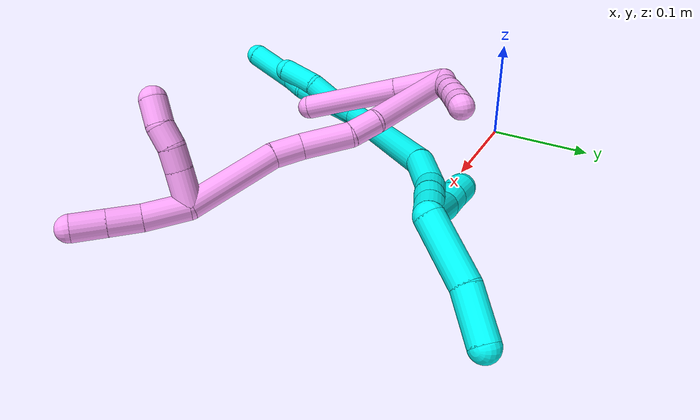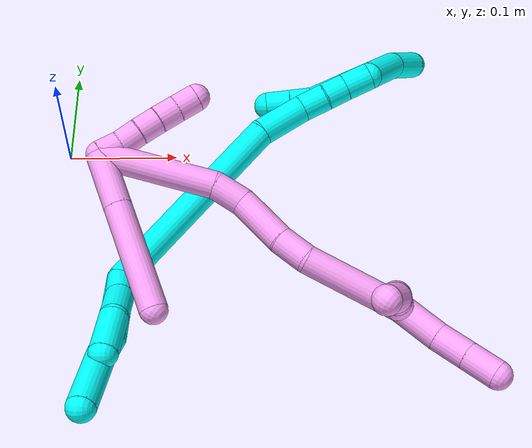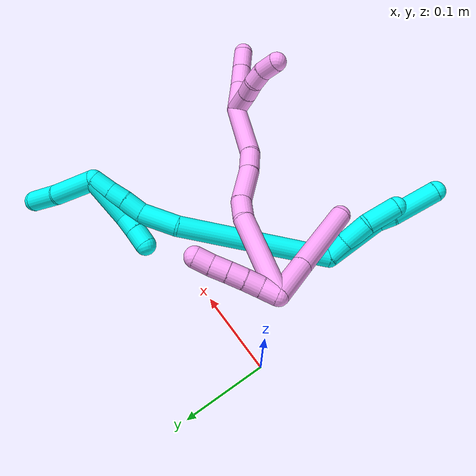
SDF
<sdf version="1.7">
 <world name="default">
  <model name="3">
   <static>0</static>
   <link name="3">
    <collision name="collision-cylinder-e_1_2_8">
     <pose>-0.02761 -0.019678 0.011037 1.05962 -0.885675 -0.541843</pose>
     <geometry><cylinder><radius>0.0125</radius><length>0.071312</length></cylinder></geometry>
     <surface>
      <friction><ode><mu>1.16</mu><mu2>1.16</mu2><slip1>0</slip1><slip2>0</slip2></ode></friction>
      <contact><ode><kp>1e+06</kp><kd>1</kd><max_vel>0</max_vel><min_depth>0.001</min_depth></ode></contact>
     </surface>
    </collision>
    <visual name="visual-cylinder-e_1_2_8">
     <pose>-0.02761 -0.019678 0.011037 1.05962 -0.885675 -0.541843</pose>
     <geometry><cylinder><radius>0.0125</radius><length>0.071312</length></cylinder></geometry>
     <material><ambient>0.003922 1 0.996078 1</ambient></material>
    </visual>
    <collision name="collision-cylinder-e_2_8_9">
     <pose>-0.064014 -0.044643 0.022452 1.49965 -1.02836 -0.968525</pose>
     <geometry><cylinder><radius>0.0125</radius><length>0.020537</length></cylinder></geometry>
     <surface>
      <friction><ode><mu>1.16</mu><mu2>1.16</mu2><slip1>0</slip1><slip2>0</slip2></ode></friction>
      <contact><ode><kp>1e+06</kp><kd>1</kd><max_vel>0</max_vel><min_depth>0.001</min_depth></ode></contact>
     </surface>
    </collision>
    <visual name="visual-cylinder-e_2_8_9">
     <pose>-0.064014 -0.044643 0.022452 1.49965 -1.02836 -0.968525</pose>
     <geometry><cylinder><radius>0.0125</radius><length>0.020537</length></cylinder></geometry>
     <material><ambient>0.003922 1 0.996078 1</ambient></material>
    </visual>
    <collision name="collision-cylinder-e_3_9_6">
     <pose>-0.097148 -0.064916 0.02816 1.22897 -0.991953 -0.729443</pose>
     <geometry><cylinder><radius>0.0125</radius><length>0.058151</length></cylinder></geometry>
     <surface>
      <friction><ode><mu>1.16</mu><mu2>1.16</mu2><slip1>0</slip1><slip2>0</slip2></ode></friction>
      <contact><ode><kp>1e+06</kp><kd>1</kd><max_vel>0</max_vel><min_depth>0.001</min_depth></ode></contact>
     </surface>
    </collision>
    <visual name="visual-cylinder-e_3_9_6">
     <pose>-0.097148 -0.064916 0.02816 1.22897 -0.991953 -0.729443</pose>
     <geometry><cylinder><radius>0.0125</radius><length>0.058151</length></cylinder></geometry>
     <material><ambient>0.003922 1 0.996078 1</ambient></material>
    </visual>
    <collision name="collision-cylinder-e_1_2_10">
     <pose>-0.010474 -0.00568 0.005208 0.828695 -0.93646 -0.437734</pose>
     <geometry><cylinder><radius>0.0125</radius><length>0.026008</length></cylinder></geometry>
     <surface>
      <friction><ode><mu>1.16</mu><mu2>1.16</mu2><slip1>0</slip1><slip2>0</slip2></ode></friction>
      <contact><ode><kp>1e+06</kp><kd>1</kd><max_vel>0</max_vel><min_depth>0.001</min_depth></ode></contact>
     </surface>
    </collision>
    <visual name="visual-cylinder-e_1_2_10">
     <pose>-0.010474 -0.00568 0.005208 0.828695 -0.93646 -0.437734</pose>
     <geometry><cylinder><radius>0.0125</radius><length>0.026008</length></cylinder></geometry>
     <material><ambient>0.003922 1 0.996078 1</ambient></material>
    </visual>
    <collision name="collision-cylinder-e_2_10_11">
     <pose>-0.035731 -0.017091 0.016242 0.777195 -1.06581 -0.473896</pose>
     <geometry><cylinder><radius>0.0125</radius><length>0.033782</length></cylinder></geometry>
     <surface>
      <friction><ode><mu>1.16</mu><mu2>1.16</mu2><slip1>0</slip1><slip2>0</slip2></ode></friction>
      <contact><ode><kp>1e+06</kp><kd>1</kd><max_vel>0</max_vel><min_depth>0.001</min_depth></ode></contact>
     </surface>
    </collision>
    <visual name="visual-cylinder-e_2_10_11">
     <pose>-0.035731 -0.017091 0.016242 0.777195 -1.06581 -0.473896</pose>
     <geometry><cylinder><radius>0.0125</radius><length>0.033782</length></cylinder></geometry>
     <material><ambient>0.003922 1 0.996078 1</ambient></material>
    </visual>
    <collision name="collision-cylinder-e_3_11_5">
     <pose>-0.066319 -0.034524 0.026249 1.22762 -0.904497 -0.659633</pose>
     <geometry><cylinder><radius>0.0125</radius><length>0.04021</length></cylinder></geometry>
     <surface>
      <friction><ode><mu>1.16</mu><mu2>1.16</mu2><slip1>0</slip1><slip2>0</slip2></ode></friction>
      <contact><ode><kp>1e+06</kp><kd>1</kd><max_vel>0</max_vel><min_depth>0.001</min_depth></ode></contact>
     </surface>
    </collision>
    <visual name="visual-cylinder-e_3_11_5">
     <pose>-0.066319 -0.034524 0.026249 1.22762 -0.904497 -0.659633</pose>
     <geometry><cylinder><radius>0.0125</radius><length>0.04021</length></cylinder></geometry>
     <material><ambient>0.003922 1 0.996078 1</ambient></material>
    </visual>
    <collision name="collision-cylinder-e_1_2_12">
     <pose>0.053323 0.061438 0.043918 -0.95018 0.614781 -0.323729</pose>
     <geometry><cylinder><radius>0.0125</radius><length>0.184898</length></cylinder></geometry>
     <surface>
      <friction><ode><mu>1.16</mu><mu2>1.16</mu2><slip1>0</slip1><slip2>0</slip2></ode></friction>
      <contact><ode><kp>1e+06</kp><kd>1</kd><max_vel>0</max_vel><min_depth>0.001</min_depth></ode></contact>
     </surface>
    </collision>
    <visual name="visual-cylinder-e_1_2_12">
     <pose>0.053323 0.061438 0.043918 -0.95018 0.614781 -0.323729</pose>
     <geometry><cylinder><radius>0.0125</radius><length>0.184898</length></cylinder></geometry>
     <material><ambient>0.003922 1 0.996078 1</ambient></material>
    </visual>
    <collision name="collision-cylinder-e_2_12_13">
     <pose>0.121258 0.133281 0.101881 -0.637632 0.696353 -0.238474</pose>
     <geometry><cylinder><radius>0.0125</radius><length>0.045565</length></cylinder></geometry>
     <surface>
      <friction><ode><mu>1.16</mu><mu2>1.16</mu2><slip1>0</slip1><slip2>0</slip2></ode></friction>
      <contact><ode><kp>1e+06</kp><kd>1</kd><max_vel>0</max_vel><min_depth>0.001</min_depth></ode></contact>
     </surface>
    </collision>
    <visual name="visual-cylinder-e_2_12_13">
     <pose>0.121258 0.133281 0.101881 -0.637632 0.696353 -0.238474</pose>
     <geometry><cylinder><radius>0.0125</radius><length>0.045565</length></cylinder></geometry>
     <material><ambient>0.003922 1 0.996078 1</ambient></material>
    </visual>
    <collision name="collision-cylinder-e_3_13_14">
     <pose>0.140736 0.148908 0.125896 -0.482419 0.407961 -0.101686</pose>
     <geometry><cylinder><radius>0.0125</radius><length>0.024524</length></cylinder></geometry>
     <surface>
      <friction><ode><mu>1.16</mu><mu2>1.16</mu2><slip1>0</slip1><slip2>0</slip2></ode></friction>
      <contact><ode><kp>1e+06</kp><kd>1</kd><max_vel>0</max_vel><min_depth>0.001</min_depth></ode></contact>
     </surface>
    </collision>
    <visual name="visual-cylinder-e_3_13_14">
     <pose>0.140736 0.148908 0.125896 -0.482419 0.407961 -0.101686</pose>
     <geometry><cylinder><radius>0.0125</radius><length>0.024524</length></cylinder></geometry>
     <material><ambient>0.003922 1 0.996078 1</ambient></material>
    </visual>
    <collision name="collision-cylinder-e_4_14_15">
     <pose>0.15051 0.158421 0.143636 -0.504666 0.505234 -0.132911</pose>
     <geometry><cylinder><radius>0.0125</radius><length>0.020284</length></cylinder></geometry>
     <surface>
      <friction><ode><mu>1.16</mu><mu2>1.16</mu2><slip1>0</slip1><slip2>0</slip2></ode></friction>
      <contact><ode><kp>1e+06</kp><kd>1</kd><max_vel>0</max_vel><min_depth>0.001</min_depth></ode></contact>
     </surface>
    </collision>
    <visual name="visual-cylinder-e_4_14_15">
     <pose>0.15051 0.158421 0.143636 -0.504666 0.505234 -0.132911</pose>
     <geometry><cylinder><radius>0.0125</radius><length>0.020284</length></cylinder></geometry>
     <material><ambient>0.003922 1 0.996078 1</ambient></material>
    </visual>
    <collision name="collision-cylinder-e_5_15_1">
     <pose>0.160815 0.167701 0.161348 -0.465077 0.451594 -0.108696</pose>
     <geometry><cylinder><radius>0.0125</radius><length>0.024729</length></cylinder></geometry>
     <surface>
      <friction><ode><mu>1.16</mu><mu2>1.16</mu2><slip1>0</slip1><slip2>0</slip2></ode></friction>
      <contact><ode><kp>1e+06</kp><kd>1</kd><max_vel>0</max_vel><min_depth>0.001</min_depth></ode></contact>
     </surface>
    </collision>
    <visual name="visual-cylinder-e_5_15_1">
     <pose>0.160815 0.167701 0.161348 -0.465077 0.451594 -0.108696</pose>
     <geometry><cylinder><radius>0.0125</radius><length>0.024729</length></cylinder></geometry>
     <material><ambient>0.003922 1 0.996078 1</ambient></material>
    </visual>
    <collision name="collision-cylinder-e_1_1_16">
     <pose>0.194385 0.177929 0.173288 -1.20657 1.3744 -1.02917</pose>
     <geometry><cylinder><radius>0.0125</radius><length>0.057453</length></cylinder></geometry>
     <surface>
      <friction><ode><mu>1.16</mu><mu2>1.16</mu2><slip1>0</slip1><slip2>0</slip2></ode></friction>
      <contact><ode><kp>1e+06</kp><kd>1</kd><max_vel>0</max_vel><min_depth>0.001</min_depth></ode></contact>
     </surface>
    </collision>
    <visual name="visual-cylinder-e_1_1_16">
     <pose>0.194385 0.177929 0.173288 -1.20657 1.3744 -1.02917</pose>
     <geometry><cylinder><radius>0.0125</radius><length>0.057453</length></cylinder></geometry>
     <material><ambient>0.003922 1 0.996078 1</ambient></material>
    </visual>
    <collision name="collision-cylinder-e_2_16_4">
     <pose>0.243477 0.183683 0.179124 -0.133649 1.38769 -0.111223</pose>
     <geometry><cylinder><radius>0.0125</radius><length>0.042547</length></cylinder></geometry>
     <surface>
      <friction><ode><mu>1.16</mu><mu2>1.16</mu2><slip1>0</slip1><slip2>0</slip2></ode></friction>
      <contact><ode><kp>1e+06</kp><kd>1</kd><max_vel>0</max_vel><min_depth>0.001</min_depth></ode></contact>
     </surface>
    </collision>
    <visual name="visual-cylinder-e_2_16_4">
     <pose>0.243477 0.183683 0.179124 -0.133649 1.38769 -0.111223</pose>
     <geometry><cylinder><radius>0.0125</radius><length>0.042547</length></cylinder></geometry>
     <material><ambient>0.003922 1 0.996078 1</ambient></material>
    </visual>
    <collision name="collision-cylinder-e_1_1_17">
     <pose>0.161023 0.16178 0.145492 2.74148 -0.183135 -0.850442</pose>
     <geometry><cylinder><radius>0.0125</radius><length>0.056977</length></cylinder></geometry>
     <surface>
      <friction><ode><mu>1.16</mu><mu2>1.16</mu2><slip1>0</slip1><slip2>0</slip2></ode></friction>
      <contact><ode><kp>1e+06</kp><kd>1</kd><max_vel>0</max_vel><min_depth>0.001</min_depth></ode></contact>
     </surface>
    </collision>
    <visual name="visual-cylinder-e_1_1_17">
     <pose>0.161023 0.16178 0.145492 2.74148 -0.183135 -0.850442</pose>
     <geometry><cylinder><radius>0.0125</radius><length>0.056977</length></cylinder></geometry>
     <material><ambient>0.003922 1 0.996078 1</ambient></material>
    </visual>
    <collision name="collision-cylinder-e_2_17_18">
     <pose>0.152167 0.149778 0.109839 3.03137 -0.35436 -2.54387</pose>
     <geometry><cylinder><radius>0.0125</radius><length>0.021141</length></cylinder></geometry>
     <surface>
      <friction><ode><mu>1.16</mu><mu2>1.16</mu2><slip1>0</slip1><slip2>0</slip2></ode></friction>
      <contact><ode><kp>1e+06</kp><kd>1</kd><max_vel>0</max_vel><min_depth>0.001</min_depth></ode></contact>
     </surface>
    </collision>
    <visual name="visual-cylinder-e_2_17_18">
     <pose>0.152167 0.149778 0.109839 3.03137 -0.35436 -2.54387</pose>
     <geometry><cylinder><radius>0.0125</radius><length>0.021141</length></cylinder></geometry>
     <material><ambient>0.003922 1 0.996078 1</ambient></material>
    </visual>
    <collision name="collision-cylinder-e_3_18_3">
     <pose>0.145166 0.147634 0.089618 3.04034 -0.309594 -2.51366</pose>
     <geometry><cylinder><radius>0.0125</radius><length>0.021883</length></cylinder></geometry>
     <surface>
      <friction><ode><mu>1.16</mu><mu2>1.16</mu2><slip1>0</slip1><slip2>0</slip2></ode></friction>
      <contact><ode><kp>1e+06</kp><kd>1</kd><max_vel>0</max_vel><min_depth>0.001</min_depth></ode></contact>
     </surface>
    </collision>
    <visual name="visual-cylinder-e_3_18_3">
     <pose>0.145166 0.147634 0.089618 3.04034 -0.309594 -2.51366</pose>
     <geometry><cylinder><radius>0.0125</radius><length>0.021883</length></cylinder></geometry>
     <material><ambient>0.003922 1 0.996078 1</ambient></material>
    </visual>
    <collision name="collision-sphere-3">
     <pose>0.141832 0.146581 0.07925 0 -0 0</pose>
     <geometry><sphere><radius>0.0125</radius></sphere></geometry>
     <surface>
      <friction><ode><mu>1.16</mu><mu2>1.16</mu2><slip1>0</slip1><slip2>0</slip2></ode></friction>
      <contact><ode><kp>1e+06</kp><kd>1</kd><max_vel>0</max_vel><min_depth>0.001</min_depth></ode></contact>
     </surface>
    </collision>
    <visual name="visual-sphere-3">
     <pose>0.141832 0.146581 0.07925 0 -0 0</pose>
     <geometry><sphere><radius>0.0125</radius></sphere></geometry>
     <material><ambient>0.003922 1 0.996078 1</ambient></material>
    </visual>
    <collision name="collision-sphere-11">
     <pose>-0.050514 -0.022822 0.022068 0 -0 0</pose>
     <geometry><sphere><radius>0.0125</radius></sphere></geometry>
     <surface>
      <friction><ode><mu>1.16</mu><mu2>1.16</mu2><slip1>0</slip1><slip2>0</slip2></ode></friction>
      <contact><ode><kp>1e+06</kp><kd>1</kd><max_vel>0</max_vel><min_depth>0.001</min_depth></ode></contact>
     </surface>
    </collision>
    <visual name="visual-sphere-11">
     <pose>-0.050514 -0.022822 0.022068 0 -0 0</pose>
     <geometry><sphere><radius>0.0125</radius></sphere></geometry>
     <material><ambient>0.003922 1 0.996078 1</ambient></material>
    </visual>
    <collision name="collision-sphere-10">
     <pose>-0.020948 -0.01136 0.010417 0 -0 0</pose>
     <geometry><sphere><radius>0.0125</radius></sphere></geometry>
     <surface>
      <friction><ode><mu>1.16</mu><mu2>1.16</mu2><slip1>0</slip1><slip2>0</slip2></ode></friction>
      <contact><ode><kp>1e+06</kp><kd>1</kd><max_vel>0</max_vel><min_depth>0.001</min_depth></ode></contact>
     </surface>
    </collision>
    <visual name="visual-sphere-10">
     <pose>-0.020948 -0.01136 0.010417 0 -0 0</pose>
     <geometry><sphere><radius>0.0125</radius></sphere></geometry>
     <material><ambient>0.003922 1 0.996078 1</ambient></material>
    </visual>
    <collision name="collision-sphere-6">
     <pose>-0.121487 -0.079902 0.033492 0 -0 0</pose>
     <geometry><sphere><radius>0.0125</radius></sphere></geometry>
     <surface>
      <friction><ode><mu>1.16</mu><mu2>1.16</mu2><slip1>0</slip1><slip2>0</slip2></ode></friction>
      <contact><ode><kp>1e+06</kp><kd>1</kd><max_vel>0</max_vel><min_depth>0.001</min_depth></ode></contact>
     </surface>
    </collision>
    <visual name="visual-sphere-6">
     <pose>-0.121487 -0.079902 0.033492 0 -0 0</pose>
     <geometry><sphere><radius>0.0125</radius></sphere></geometry>
     <material><ambient>0.003922 1 0.996078 1</ambient></material>
    </visual>
    <collision name="collision-sphere-9">
     <pose>-0.072809 -0.04993 0.022828 0 -0 0</pose>
     <geometry><sphere><radius>0.0125</radius></sphere></geometry>
     <surface>
      <friction><ode><mu>1.16</mu><mu2>1.16</mu2><slip1>0</slip1><slip2>0</slip2></ode></friction>
      <contact><ode><kp>1e+06</kp><kd>1</kd><max_vel>0</max_vel><min_depth>0.001</min_depth></ode></contact>
     </surface>
    </collision>
    <visual name="visual-sphere-9">
     <pose>-0.072809 -0.04993 0.022828 0 -0 0</pose>
     <geometry><sphere><radius>0.0125</radius></sphere></geometry>
     <material><ambient>0.003922 1 0.996078 1</ambient></material>
    </visual>
    <collision name="collision-sphere-2">
     <geometry><sphere><radius>0.0125</radius></sphere></geometry>
     <surface>
      <friction><ode><mu>1.16</mu><mu2>1.16</mu2><slip1>0</slip1><slip2>0</slip2></ode></friction>
      <contact><ode><kp>1e+06</kp><kd>1</kd><max_vel>0</max_vel><min_depth>0.001</min_depth></ode></contact>
     </surface>
    </collision>
    <visual name="visual-sphere-2">
     <geometry><sphere><radius>0.0125</radius></sphere></geometry>
     <material><ambient>0.003922 1 0.996078 1</ambient></material>
    </visual>
    <collision name="collision-sphere-8">
     <pose>-0.05522 -0.039356 0.022075 0 -0 0</pose>
     <geometry><sphere><radius>0.0125</radius></sphere></geometry>
     <surface>
      <friction><ode><mu>1.16</mu><mu2>1.16</mu2><slip1>0</slip1><slip2>0</slip2></ode></friction>
      <contact><ode><kp>1e+06</kp><kd>1</kd><max_vel>0</max_vel><min_depth>0.001</min_depth></ode></contact>
     </surface>
    </collision>
    <visual name="visual-sphere-8">
     <pose>-0.05522 -0.039356 0.022075 0 -0 0</pose>
     <geometry><sphere><radius>0.0125</radius></sphere></geometry>
     <material><ambient>0.003922 1 0.996078 1</ambient></material>
    </visual>
    <collision name="collision-sphere-5">
     <pose>-0.082124 -0.046226 0.030431 0 -0 0</pose>
     <geometry><sphere><radius>0.0125</radius></sphere></geometry>
     <surface>
      <friction><ode><mu>1.16</mu><mu2>1.16</mu2><slip1>0</slip1><slip2>0</slip2></ode></friction>
      <contact><ode><kp>1e+06</kp><kd>1</kd><max_vel>0</max_vel><min_depth>0.001</min_depth></ode></contact>
     </surface>
    </collision>
    <visual name="visual-sphere-5">
     <pose>-0.082124 -0.046226 0.030431 0 -0 0</pose>
     <geometry><sphere><radius>0.0125</radius></sphere></geometry>
     <material><ambient>0.003922 1 0.996078 1</ambient></material>
    </visual>
    <collision name="collision-sphere-12">
     <pose>0.106645 0.122876 0.087837 0 -0 0</pose>
     <geometry><sphere><radius>0.0125</radius></sphere></geometry>
     <surface>
      <friction><ode><mu>1.16</mu><mu2>1.16</mu2><slip1>0</slip1><slip2>0</slip2></ode></friction>
      <contact><ode><kp>1e+06</kp><kd>1</kd><max_vel>0</max_vel><min_depth>0.001</min_depth></ode></contact>
     </surface>
    </collision>
    <visual name="visual-sphere-12">
     <pose>0.106645 0.122876 0.087837 0 -0 0</pose>
     <geometry><sphere><radius>0.0125</radius></sphere></geometry>
     <material><ambient>0.003922 1 0.996078 1</ambient></material>
    </visual>
    <collision name="collision-sphere-13">
     <pose>0.135872 0.143686 0.115925 0 -0 0</pose>
     <geometry><sphere><radius>0.0125</radius></sphere></geometry>
     <surface>
      <friction><ode><mu>1.16</mu><mu2>1.16</mu2><slip1>0</slip1><slip2>0</slip2></ode></friction>
      <contact><ode><kp>1e+06</kp><kd>1</kd><max_vel>0</max_vel><min_depth>0.001</min_depth></ode></contact>
     </surface>
    </collision>
    <visual name="visual-sphere-13">
     <pose>0.135872 0.143686 0.115925 0 -0 0</pose>
     <geometry><sphere><radius>0.0125</radius></sphere></geometry>
     <material><ambient>0.003922 1 0.996078 1</ambient></material>
    </visual>
    <collision name="collision-sphere-14">
     <pose>0.145601 0.15413 0.135867 0 -0 0</pose>
     <geometry><sphere><radius>0.0125</radius></sphere></geometry>
     <surface>
      <friction><ode><mu>1.16</mu><mu2>1.16</mu2><slip1>0</slip1><slip2>0</slip2></ode></friction>
      <contact><ode><kp>1e+06</kp><kd>1</kd><max_vel>0</max_vel><min_depth>0.001</min_depth></ode></contact>
     </surface>
    </collision>
    <visual name="visual-sphere-14">
     <pose>0.145601 0.15413 0.135867 0 -0 0</pose>
     <geometry><sphere><radius>0.0125</radius></sphere></geometry>
     <material><ambient>0.003922 1 0.996078 1</ambient></material>
    </visual>
    <collision name="collision-sphere-15">
     <pose>0.155419 0.162712 0.151404 0 -0 0</pose>
     <geometry><sphere><radius>0.0125</radius></sphere></geometry>
     <surface>
      <friction><ode><mu>1.16</mu><mu2>1.16</mu2><slip1>0</slip1><slip2>0</slip2></ode></friction>
      <contact><ode><kp>1e+06</kp><kd>1</kd><max_vel>0</max_vel><min_depth>0.001</min_depth></ode></contact>
     </surface>
    </collision>
    <visual name="visual-sphere-15">
     <pose>0.155419 0.162712 0.151404 0 -0 0</pose>
     <geometry><sphere><radius>0.0125</radius></sphere></geometry>
     <material><ambient>0.003922 1 0.996078 1</ambient></material>
    </visual>
    <collision name="collision-sphere-1">
     <pose>0.166211 0.172691 0.171291 0 -0 0</pose>
     <geometry><sphere><radius>0.0125</radius></sphere></geometry>
     <surface>
      <friction><ode><mu>1.16</mu><mu2>1.16</mu2><slip1>0</slip1><slip2>0</slip2></ode></friction>
      <contact><ode><kp>1e+06</kp><kd>1</kd><max_vel>0</max_vel><min_depth>0.001</min_depth></ode></contact>
     </surface>
    </collision>
    <visual name="visual-sphere-1">
     <pose>0.166211 0.172691 0.171291 0 -0 0</pose>
     <geometry><sphere><radius>0.0125</radius></sphere></geometry>
     <material><ambient>0.003922 1 0.996078 1</ambient></material>
    </visual>
    <collision name="collision-sphere-18">
     <pose>0.148499 0.148687 0.099986 0 -0 0</pose>
     <geometry><sphere><radius>0.0125</radius></sphere></geometry>
     <surface>
      <friction><ode><mu>1.16</mu><mu2>1.16</mu2><slip1>0</slip1><slip2>0</slip2></ode></friction>
      <contact><ode><kp>1e+06</kp><kd>1</kd><max_vel>0</max_vel><min_depth>0.001</min_depth></ode></contact>
     </surface>
    </collision>
    <visual name="visual-sphere-18">
     <pose>0.148499 0.148687 0.099986 0 -0 0</pose>
     <geometry><sphere><radius>0.0125</radius></sphere></geometry>
     <material><ambient>0.003922 1 0.996078 1</ambient></material>
    </visual>
    <collision name="collision-sphere-16">
     <pose>0.22256 0.183167 0.175285 0 -0 0</pose>
     <geometry><sphere><radius>0.0125</radius></sphere></geometry>
     <surface>
      <friction><ode><mu>1.16</mu><mu2>1.16</mu2><slip1>0</slip1><slip2>0</slip2></ode></friction>
      <contact><ode><kp>1e+06</kp><kd>1</kd><max_vel>0</max_vel><min_depth>0.001</min_depth></ode></contact>
     </surface>
    </collision>
    <visual name="visual-sphere-16">
     <pose>0.22256 0.183167 0.175285 0 -0 0</pose>
     <geometry><sphere><radius>0.0125</radius></sphere></geometry>
     <material><ambient>0.003922 1 0.996078 1</ambient></material>
    </visual>
    <collision name="collision-sphere-4">
     <pose>0.264395 0.184199 0.182963 0 -0 0</pose>
     <geometry><sphere><radius>0.0125</radius></sphere></geometry>
     <surface>
      <friction><ode><mu>1.16</mu><mu2>1.16</mu2><slip1>0</slip1><slip2>0</slip2></ode></friction>
      <contact><ode><kp>1e+06</kp><kd>1</kd><max_vel>0</max_vel><min_depth>0.001</min_depth></ode></contact>
     </surface>
    </collision>
    <visual name="visual-sphere-4">
     <pose>0.264395 0.184199 0.182963 0 -0 0</pose>
     <geometry><sphere><radius>0.0125</radius></sphere></geometry>
     <material><ambient>0.003922 1 0.996078 1</ambient></material>
    </visual>
    <collision name="collision-sphere-17">
     <pose>0.155835 0.150868 0.119692 0 -0 0</pose>
     <geometry><sphere><radius>0.0125</radius></sphere></geometry>
     <surface>
      <friction><ode><mu>1.16</mu><mu2>1.16</mu2><slip1>0</slip1><slip2>0</slip2></ode></friction>
      <contact><ode><kp>1e+06</kp><kd>1</kd><max_vel>0</max_vel><min_depth>0.001</min_depth></ode></contact>
     </surface>
    </collision>
    <visual name="visual-sphere-17">
     <pose>0.155835 0.150868 0.119692 0 -0 0</pose>
     <geometry><sphere><radius>0.0125</radius></sphere></geometry>
     <material><ambient>0.003922 1 0.996078 1</ambient></material>
    </visual>
    <inertial>
     <pose>0.066509 0.071852 0.076705 0 -0 0</pose>
     <mass>0.75</mass>
     <inertia>
      <ixx>0.000292</ixx>
      <ixy>0</ixy>
      <ixz>0</ixz>
      <iyy>0.00028</iyy>
      <iyz>0</iyz>
      <izz>-0.000595</izz>
     </inertia>
    </inertial>
   </link>
   <pose>0.057707 -0.144284 0.011491 1.14825 0.743275 0.991347</pose>
  </model>
  <model name="4">
   <static>0</static>
   <link name="4">
    <collision name="collision-cylinder-e_1_2_8">
     <pose>0.007174 -0.011177 0.022217 0.466124 0.280848 0.067083</pose>
     <geometry><cylinder><radius>0.0125</radius><length>0.051768</length></cylinder></geometry>
     <surface>
      <friction><ode><mu>1.16</mu><mu2>1.16</mu2><slip1>0</slip1><slip2>0</slip2></ode></friction>
      <contact><ode><kp>1e+06</kp><kd>1</kd><max_vel>0</max_vel><min_depth>0.001</min_depth></ode></contact>
     </surface>
    </collision>
    <visual name="visual-cylinder-e_1_2_8">
     <pose>0.007174 -0.011177 0.022217 0.466124 0.280848 0.067083</pose>
     <geometry><cylinder><radius>0.0125</radius><length>0.051768</length></cylinder></geometry>
     <material><ambient>1 0.65098 0.996078 1</ambient></material>
    </visual>
    <collision name="collision-cylinder-e_2_8_6">
     <pose>0.02797 -0.043559 0.08659 0.466037 0.281008 0.067109</pose>
     <geometry><cylinder><radius>0.0125</radius><length>0.098232</length></cylinder></geometry>
     <surface>
      <friction><ode><mu>1.16</mu><mu2>1.16</mu2><slip1>0</slip1><slip2>0</slip2></ode></friction>
      <contact><ode><kp>1e+06</kp><kd>1</kd><max_vel>0</max_vel><min_depth>0.001</min_depth></ode></contact>
     </surface>
    </collision>
    <visual name="visual-cylinder-e_2_8_6">
     <pose>0.02797 -0.043559 0.08659 0.466037 0.281008 0.067109</pose>
     <geometry><cylinder><radius>0.0125</radius><length>0.098232</length></cylinder></geometry>
     <material><ambient>1 0.65098 0.996078 1</ambient></material>
    </visual>
    <collision name="collision-cylinder-e_1_2_9">
     <pose>-0.001706 0.009307 0.003235 -1.23631 -0.171468 0.122083</pose>
     <geometry><cylinder><radius>0.0125</radius><length>0.02</length></cylinder></geometry>
     <surface>
      <friction><ode><mu>1.16</mu><mu2>1.16</mu2><slip1>0</slip1><slip2>0</slip2></ode></friction>
      <contact><ode><kp>1e+06</kp><kd>1</kd><max_vel>0</max_vel><min_depth>0.001</min_depth></ode></contact>
     </surface>
    </collision>
    <visual name="visual-cylinder-e_1_2_9">
     <pose>-0.001706 0.009307 0.003235 -1.23631 -0.171468 0.122083</pose>
     <geometry><cylinder><radius>0.0125</radius><length>0.02</length></cylinder></geometry>
     <material><ambient>1 0.65098 0.996078 1</ambient></material>
    </visual>
    <collision name="collision-cylinder-e_2_9_10">
     <pose>-0.006602 0.027757 0.008969 -1.30393 -0.324566 0.248653</pose>
     <geometry><cylinder><radius>0.0125</radius><length>0.02</length></cylinder></geometry>
     <surface>
      <friction><ode><mu>1.16</mu><mu2>1.16</mu2><slip1>0</slip1><slip2>0</slip2></ode></friction>
      <contact><ode><kp>1e+06</kp><kd>1</kd><max_vel>0</max_vel><min_depth>0.001</min_depth></ode></contact>
     </surface>
    </collision>
    <visual name="visual-cylinder-e_2_9_10">
     <pose>-0.006602 0.027757 0.008969 -1.30393 -0.324566 0.248653</pose>
     <geometry><cylinder><radius>0.0125</radius><length>0.02</length></cylinder></geometry>
     <material><ambient>1 0.65098 0.996078 1</ambient></material>
    </visual>
    <collision name="collision-cylinder-e_3_10_11">
     <pose>-0.012315 0.04623 0.014032 -1.30259 -0.255184 0.194957</pose>
     <geometry><cylinder><radius>0.0125</radius><length>0.02</length></cylinder></geometry>
     <surface>
      <friction><ode><mu>1.16</mu><mu2>1.16</mu2><slip1>0</slip1><slip2>0</slip2></ode></friction>
      <contact><ode><kp>1e+06</kp><kd>1</kd><max_vel>0</max_vel><min_depth>0.001</min_depth></ode></contact>
     </surface>
    </collision>
    <visual name="visual-cylinder-e_3_10_11">
     <pose>-0.012315 0.04623 0.014032 -1.30259 -0.255184 0.194957</pose>
     <geometry><cylinder><radius>0.0125</radius><length>0.02</length></cylinder></geometry>
     <material><ambient>1 0.65098 0.996078 1</ambient></material>
    </visual>
    <collision name="collision-cylinder-e_4_11_12">
     <pose>-0.016907 0.065004 0.019152 -1.3065 -0.208331 0.159685</pose>
     <geometry><cylinder><radius>0.0125</radius><length>0.02</length></cylinder></geometry>
     <surface>
      <friction><ode><mu>1.16</mu><mu2>1.16</mu2><slip1>0</slip1><slip2>0</slip2></ode></friction>
      <contact><ode><kp>1e+06</kp><kd>1</kd><max_vel>0</max_vel><min_depth>0.001</min_depth></ode></contact>
     </surface>
    </collision>
    <visual name="visual-cylinder-e_4_11_12">
     <pose>-0.016907 0.065004 0.019152 -1.3065 -0.208331 0.159685</pose>
     <geometry><cylinder><radius>0.0125</radius><length>0.02</length></cylinder></geometry>
     <material><ambient>1 0.65098 0.996078 1</ambient></material>
    </visual>
    <collision name="collision-cylinder-e_5_12_5">
     <pose>-0.021674 0.083565 0.024806 -1.24327 -0.273228 0.196329</pose>
     <geometry><cylinder><radius>0.0125</radius><length>0.02</length></cylinder></geometry>
     <surface>
      <friction><ode><mu>1.16</mu><mu2>1.16</mu2><slip1>0</slip1><slip2>0</slip2></ode></friction>
      <contact><ode><kp>1e+06</kp><kd>1</kd><max_vel>0</max_vel><min_depth>0.001</min_depth></ode></contact>
     </surface>
    </collision>
    <visual name="visual-cylinder-e_5_12_5">
     <pose>-0.021674 0.083565 0.024806 -1.24327 -0.273228 0.196329</pose>
     <geometry><cylinder><radius>0.0125</radius><length>0.02</length></cylinder></geometry>
     <material><ambient>1 0.65098 0.996078 1</ambient></material>
    </visual>
    <collision name="collision-cylinder-e_1_2_13">
     <pose>0.001504 0.023634 0.047195 -0.464267 0.028484 -0.006734</pose>
     <geometry><cylinder><radius>0.0125</radius><length>0.105607</length></cylinder></geometry>
     <surface>
      <friction><ode><mu>1.16</mu><mu2>1.16</mu2><slip1>0</slip1><slip2>0</slip2></ode></friction>
      <contact><ode><kp>1e+06</kp><kd>1</kd><max_vel>0</max_vel><min_depth>0.001</min_depth></ode></contact>
     </surface>
    </collision>
    <visual name="visual-cylinder-e_1_2_13">
     <pose>0.001504 0.023634 0.047195 -0.464267 0.028484 -0.006734</pose>
     <geometry><cylinder><radius>0.0125</radius><length>0.105607</length></cylinder></geometry>
     <material><ambient>1 0.65098 0.996078 1</ambient></material>
    </visual>
    <collision name="collision-cylinder-e_2_13_14">
     <pose>0.00575 0.050274 0.10796 -0.217966 0.194818 -0.021383</pose>
     <geometry><cylinder><radius>0.0125</radius><length>0.028333</length></cylinder></geometry>
     <surface>
      <friction><ode><mu>1.16</mu><mu2>1.16</mu2><slip1>0</slip1><slip2>0</slip2></ode></friction>
      <contact><ode><kp>1e+06</kp><kd>1</kd><max_vel>0</max_vel><min_depth>0.001</min_depth></ode></contact>
     </surface>
    </collision>
    <visual name="visual-cylinder-e_2_13_14">
     <pose>0.00575 0.050274 0.10796 -0.217966 0.194818 -0.021383</pose>
     <geometry><cylinder><radius>0.0125</radius><length>0.028333</length></cylinder></geometry>
     <material><ambient>1 0.65098 0.996078 1</ambient></material>
    </visual>
    <collision name="collision-cylinder-e_3_14_15">
     <pose>0.01128 0.050906 0.145408 0.099076 0.115642 0.00574</pose>
     <geometry><cylinder><radius>0.0125</radius><length>0.048314</length></cylinder></geometry>
     <surface>
      <friction><ode><mu>1.16</mu><mu2>1.16</mu2><slip1>0</slip1><slip2>0</slip2></ode></friction>
      <contact><ode><kp>1e+06</kp><kd>1</kd><max_vel>0</max_vel><min_depth>0.001</min_depth></ode></contact>
     </surface>
    </collision>
    <visual name="visual-cylinder-e_3_14_15">
     <pose>0.01128 0.050906 0.145408 0.099076 0.115642 0.00574</pose>
     <geometry><cylinder><radius>0.0125</radius><length>0.048314</length></cylinder></geometry>
     <material><ambient>1 0.65098 0.996078 1</ambient></material>
    </visual>
    <collision name="collision-cylinder-e_4_15_16">
     <pose>0.015362 0.049248 0.183566 -0.050046 0.090269 -0.002261</pose>
     <geometry><cylinder><radius>0.0125</radius><length>0.028714</length></cylinder></geometry>
     <surface>
      <friction><ode><mu>1.16</mu><mu2>1.16</mu2><slip1>0</slip1><slip2>0</slip2></ode></friction>
      <contact><ode><kp>1e+06</kp><kd>1</kd><max_vel>0</max_vel><min_depth>0.001</min_depth></ode></contact>
     </surface>
    </collision>
    <visual name="visual-cylinder-e_4_15_16">
     <pose>0.015362 0.049248 0.183566 -0.050046 0.090269 -0.002261</pose>
     <geometry><cylinder><radius>0.0125</radius><length>0.028714</length></cylinder></geometry>
     <material><ambient>1 0.65098 0.996078 1</ambient></material>
    </visual>
    <collision name="collision-cylinder-e_5_16_1">
     <pose>0.025132 0.063479 0.239406 -0.314431 0.191586 -0.030462</pose>
     <geometry><cylinder><radius>0.0125</radius><length>0.089032</length></cylinder></geometry>
     <surface>
      <friction><ode><mu>1.16</mu><mu2>1.16</mu2><slip1>0</slip1><slip2>0</slip2></ode></friction>
      <contact><ode><kp>1e+06</kp><kd>1</kd><max_vel>0</max_vel><min_depth>0.001</min_depth></ode></contact>
     </surface>
    </collision>
    <visual name="visual-cylinder-e_5_16_1">
     <pose>0.025132 0.063479 0.239406 -0.314431 0.191586 -0.030462</pose>
     <geometry><cylinder><radius>0.0125</radius><length>0.089032</length></cylinder></geometry>
     <material><ambient>1 0.65098 0.996078 1</ambient></material>
    </visual>
    <collision name="collision-cylinder-e_1_1_17">
     <pose>0.034409 0.076934 0.301394 0.002978 0.039143 5.8e-05</pose>
     <geometry><cylinder><radius>0.0125</radius><length>0.04089</length></cylinder></geometry>
     <surface>
      <friction><ode><mu>1.16</mu><mu2>1.16</mu2><slip1>0</slip1><slip2>0</slip2></ode></friction>
      <contact><ode><kp>1e+06</kp><kd>1</kd><max_vel>0</max_vel><min_depth>0.001</min_depth></ode></contact>
     </surface>
    </collision>
    <visual name="visual-cylinder-e_1_1_17">
     <pose>0.034409 0.076934 0.301394 0.002978 0.039143 5.8e-05</pose>
     <geometry><cylinder><radius>0.0125</radius><length>0.04089</length></cylinder></geometry>
     <material><ambient>1 0.65098 0.996078 1</ambient></material>
    </visual>
    <collision name="collision-cylinder-e_2_17_18">
     <pose>0.033848 0.076974 0.336606 -0.006879 -0.091828 0.000316</pose>
     <geometry><cylinder><radius>0.0125</radius><length>0.02969</length></cylinder></geometry>
     <surface>
      <friction><ode><mu>1.16</mu><mu2>1.16</mu2><slip1>0</slip1><slip2>0</slip2></ode></friction>
      <contact><ode><kp>1e+06</kp><kd>1</kd><max_vel>0</max_vel><min_depth>0.001</min_depth></ode></contact>
     </surface>
    </collision>
    <visual name="visual-cylinder-e_2_17_18">
     <pose>0.033848 0.076974 0.336606 -0.006879 -0.091828 0.000316</pose>
     <geometry><cylinder><radius>0.0125</radius><length>0.02969</length></cylinder></geometry>
     <material><ambient>1 0.65098 0.996078 1</ambient></material>
    </visual>
    <collision name="collision-cylinder-e_3_18_4">
     <pose>0.031091 0.077144 0.366031 -0.004619 -0.094991 0.00022</pose>
     <geometry><cylinder><radius>0.0125</radius><length>0.029419</length></cylinder></geometry>
     <surface>
      <friction><ode><mu>1.16</mu><mu2>1.16</mu2><slip1>0</slip1><slip2>0</slip2></ode></friction>
      <contact><ode><kp>1e+06</kp><kd>1</kd><max_vel>0</max_vel><min_depth>0.001</min_depth></ode></contact>
     </surface>
    </collision>
    <visual name="visual-cylinder-e_3_18_4">
     <pose>0.031091 0.077144 0.366031 -0.004619 -0.094991 0.00022</pose>
     <geometry><cylinder><radius>0.0125</radius><length>0.029419</length></cylinder></geometry>
     <material><ambient>1 0.65098 0.996078 1</ambient></material>
    </visual>
    <collision name="collision-cylinder-e_1_1_19">
     <pose>0.018873 0.069067 0.282302 1.4037 -1.07134 -0.930226</pose>
     <geometry><cylinder><radius>0.0125</radius><length>0.033573</length></cylinder></geometry>
     <surface>
      <friction><ode><mu>1.16</mu><mu2>1.16</mu2><slip1>0</slip1><slip2>0</slip2></ode></friction>
      <contact><ode><kp>1e+06</kp><kd>1</kd><max_vel>0</max_vel><min_depth>0.001</min_depth></ode></contact>
     </surface>
    </collision>
    <visual name="visual-cylinder-e_1_1_19">
     <pose>0.018873 0.069067 0.282302 1.4037 -1.07134 -0.930226</pose>
     <geometry><cylinder><radius>0.0125</radius><length>0.033573</length></cylinder></geometry>
     <material><ambient>1 0.65098 0.996078 1</ambient></material>
    </visual>
    <collision name="collision-cylinder-e_2_19_20">
     <pose>-0.005316 0.056673 0.284722 1.33287 -1.11832 -0.914707</pose>
     <geometry><cylinder><radius>0.0125</radius><length>0.021022</length></cylinder></geometry>
     <surface>
      <friction><ode><mu>1.16</mu><mu2>1.16</mu2><slip1>0</slip1><slip2>0</slip2></ode></friction>
      <contact><ode><kp>1e+06</kp><kd>1</kd><max_vel>0</max_vel><min_depth>0.001</min_depth></ode></contact>
     </surface>
    </collision>
    <visual name="visual-cylinder-e_2_19_20">
     <pose>-0.005316 0.056673 0.284722 1.33287 -1.11832 -0.914707</pose>
     <geometry><cylinder><radius>0.0125</radius><length>0.021022</length></cylinder></geometry>
     <material><ambient>1 0.65098 0.996078 1</ambient></material>
    </visual>
    <collision name="collision-cylinder-e_3_20_21">
     <pose>-0.02267 0.046244 0.288752 1.11177 -0.871 -0.562774</pose>
     <geometry><cylinder><radius>0.0125</radius><length>0.020655</length></cylinder></geometry>
     <surface>
      <friction><ode><mu>1.16</mu><mu2>1.16</mu2><slip1>0</slip1><slip2>0</slip2></ode></friction>
      <contact><ode><kp>1e+06</kp><kd>1</kd><max_vel>0</max_vel><min_depth>0.001</min_depth></ode></contact>
     </surface>
    </collision>
    <visual name="visual-cylinder-e_3_20_21">
     <pose>-0.02267 0.046244 0.288752 1.11177 -0.871 -0.562774</pose>
     <geometry><cylinder><radius>0.0125</radius><length>0.020655</length></cylinder></geometry>
     <material><ambient>1 0.65098 0.996078 1</ambient></material>
    </visual>
    <collision name="collision-cylinder-e_4_21_3">
     <pose>-0.038996 0.031233 0.292236 1.51158 -0.748947 -0.709479</pose>
     <geometry><cylinder><radius>0.0125</radius><length>0.02475</length></cylinder></geometry>
     <surface>
      <friction><ode><mu>1.16</mu><mu2>1.16</mu2><slip1>0</slip1><slip2>0</slip2></ode></friction>
      <contact><ode><kp>1e+06</kp><kd>1</kd><max_vel>0</max_vel><min_depth>0.001</min_depth></ode></contact>
     </surface>
    </collision>
    <visual name="visual-cylinder-e_4_21_3">
     <pose>-0.038996 0.031233 0.292236 1.51158 -0.748947 -0.709479</pose>
     <geometry><cylinder><radius>0.0125</radius><length>0.02475</length></cylinder></geometry>
     <material><ambient>1 0.65098 0.996078 1</ambient></material>
    </visual>
    <collision name="collision-sphere-3">
     <pose>-0.047421 0.022186 0.292772 0 -0 0</pose>
     <geometry><sphere><radius>0.0125</radius></sphere></geometry>
     <surface>
      <friction><ode><mu>1.16</mu><mu2>1.16</mu2><slip1>0</slip1><slip2>0</slip2></ode></friction>
      <contact><ode><kp>1e+06</kp><kd>1</kd><max_vel>0</max_vel><min_depth>0.001</min_depth></ode></contact>
     </surface>
    </collision>
    <visual name="visual-sphere-3">
     <pose>-0.047421 0.022186 0.292772 0 -0 0</pose>
     <geometry><sphere><radius>0.0125</radius></sphere></geometry>
     <material><ambient>1 0.65098 0.996078 1</ambient></material>
    </visual>
    <collision name="collision-sphere-21">
     <pose>-0.03057 0.040281 0.291699 0 -0 0</pose>
     <geometry><sphere><radius>0.0125</radius></sphere></geometry>
     <surface>
      <friction><ode><mu>1.16</mu><mu2>1.16</mu2><slip1>0</slip1><slip2>0</slip2></ode></friction>
      <contact><ode><kp>1e+06</kp><kd>1</kd><max_vel>0</max_vel><min_depth>0.001</min_depth></ode></contact>
     </surface>
    </collision>
    <visual name="visual-sphere-21">
     <pose>-0.03057 0.040281 0.291699 0 -0 0</pose>
     <geometry><sphere><radius>0.0125</radius></sphere></geometry>
     <material><ambient>1 0.65098 0.996078 1</ambient></material>
    </visual>
    <collision name="collision-sphere-20">
     <pose>-0.014769 0.052207 0.285805 0 -0 0</pose>
     <geometry><sphere><radius>0.0125</radius></sphere></geometry>
     <surface>
      <friction><ode><mu>1.16</mu><mu2>1.16</mu2><slip1>0</slip1><slip2>0</slip2></ode></friction>
      <contact><ode><kp>1e+06</kp><kd>1</kd><max_vel>0</max_vel><min_depth>0.001</min_depth></ode></contact>
     </surface>
    </collision>
    <visual name="visual-sphere-20">
     <pose>-0.014769 0.052207 0.285805 0 -0 0</pose>
     <geometry><sphere><radius>0.0125</radius></sphere></geometry>
     <material><ambient>1 0.65098 0.996078 1</ambient></material>
    </visual>
    <collision name="collision-sphere-19">
     <pose>0.004137 0.061139 0.283639 0 -0 0</pose>
     <geometry><sphere><radius>0.0125</radius></sphere></geometry>
     <surface>
      <friction><ode><mu>1.16</mu><mu2>1.16</mu2><slip1>0</slip1><slip2>0</slip2></ode></friction>
      <contact><ode><kp>1e+06</kp><kd>1</kd><max_vel>0</max_vel><min_depth>0.001</min_depth></ode></contact>
     </surface>
    </collision>
    <visual name="visual-sphere-19">
     <pose>0.004137 0.061139 0.283639 0 -0 0</pose>
     <geometry><sphere><radius>0.0125</radius></sphere></geometry>
     <material><ambient>1 0.65098 0.996078 1</ambient></material>
    </visual>
    <collision name="collision-sphere-11">
     <pose>-0.014839 0.05556 0.016597 0 -0 0</pose>
     <geometry><sphere><radius>0.0125</radius></sphere></geometry>
     <surface>
      <friction><ode><mu>1.16</mu><mu2>1.16</mu2><slip1>0</slip1><slip2>0</slip2></ode></friction>
      <contact><ode><kp>1e+06</kp><kd>1</kd><max_vel>0</max_vel><min_depth>0.001</min_depth></ode></contact>
     </surface>
    </collision>
    <visual name="visual-sphere-11">
     <pose>-0.014839 0.05556 0.016597 0 -0 0</pose>
     <geometry><sphere><radius>0.0125</radius></sphere></geometry>
     <material><ambient>1 0.65098 0.996078 1</ambient></material>
    </visual>
    <collision name="collision-sphere-10">
     <pose>-0.009791 0.036899 0.011468 0 -0 0</pose>
     <geometry><sphere><radius>0.0125</radius></sphere></geometry>
     <surface>
      <friction><ode><mu>1.16</mu><mu2>1.16</mu2><slip1>0</slip1><slip2>0</slip2></ode></friction>
      <contact><ode><kp>1e+06</kp><kd>1</kd><max_vel>0</max_vel><min_depth>0.001</min_depth></ode></contact>
     </surface>
    </collision>
    <visual name="visual-sphere-10">
     <pose>-0.009791 0.036899 0.011468 0 -0 0</pose>
     <geometry><sphere><radius>0.0125</radius></sphere></geometry>
     <material><ambient>1 0.65098 0.996078 1</ambient></material>
    </visual>
    <collision name="collision-sphere-6">
     <pose>0.041591 -0.064763 0.128747 0 -0 0</pose>
     <geometry><sphere><radius>0.0125</radius></sphere></geometry>
     <surface>
      <friction><ode><mu>1.16</mu><mu2>1.16</mu2><slip1>0</slip1><slip2>0</slip2></ode></friction>
      <contact><ode><kp>1e+06</kp><kd>1</kd><max_vel>0</max_vel><min_depth>0.001</min_depth></ode></contact>
     </surface>
    </collision>
    <visual name="visual-sphere-6">
     <pose>0.041591 -0.064763 0.128747 0 -0 0</pose>
     <geometry><sphere><radius>0.0125</radius></sphere></geometry>
     <material><ambient>1 0.65098 0.996078 1</ambient></material>
    </visual>
    <collision name="collision-sphere-9">
     <pose>-0.003413 0.018615 0.006469 0 -0 0</pose>
     <geometry><sphere><radius>0.0125</radius></sphere></geometry>
     <surface>
      <friction><ode><mu>1.16</mu><mu2>1.16</mu2><slip1>0</slip1><slip2>0</slip2></ode></friction>
      <contact><ode><kp>1e+06</kp><kd>1</kd><max_vel>0</max_vel><min_depth>0.001</min_depth></ode></contact>
     </surface>
    </collision>
    <visual name="visual-sphere-9">
     <pose>-0.003413 0.018615 0.006469 0 -0 0</pose>
     <geometry><sphere><radius>0.0125</radius></sphere></geometry>
     <material><ambient>1 0.65098 0.996078 1</ambient></material>
    </visual>
    <collision name="collision-sphere-2">
     <geometry><sphere><radius>0.0125</radius></sphere></geometry>
     <surface>
      <friction><ode><mu>1.16</mu><mu2>1.16</mu2><slip1>0</slip1><slip2>0</slip2></ode></friction>
      <contact><ode><kp>1e+06</kp><kd>1</kd><max_vel>0</max_vel><min_depth>0.001</min_depth></ode></contact>
     </surface>
    </collision>
    <visual name="visual-sphere-2">
     <geometry><sphere><radius>0.0125</radius></sphere></geometry>
     <material><ambient>1 0.65098 0.996078 1</ambient></material>
    </visual>
    <collision name="collision-sphere-8">
     <pose>0.014349 -0.022354 0.044433 0 -0 0</pose>
     <geometry><sphere><radius>0.0125</radius></sphere></geometry>
     <surface>
      <friction><ode><mu>1.16</mu><mu2>1.16</mu2><slip1>0</slip1><slip2>0</slip2></ode></friction>
      <contact><ode><kp>1e+06</kp><kd>1</kd><max_vel>0</max_vel><min_depth>0.001</min_depth></ode></contact>
     </surface>
    </collision>
    <visual name="visual-sphere-8">
     <pose>0.014349 -0.022354 0.044433 0 -0 0</pose>
     <geometry><sphere><radius>0.0125</radius></sphere></geometry>
     <material><ambient>1 0.65098 0.996078 1</ambient></material>
    </visual>
    <collision name="collision-sphere-12">
     <pose>-0.018976 0.074448 0.021708 0 -0 0</pose>
     <geometry><sphere><radius>0.0125</radius></sphere></geometry>
     <surface>
      <friction><ode><mu>1.16</mu><mu2>1.16</mu2><slip1>0</slip1><slip2>0</slip2></ode></friction>
      <contact><ode><kp>1e+06</kp><kd>1</kd><max_vel>0</max_vel><min_depth>0.001</min_depth></ode></contact>
     </surface>
    </collision>
    <visual name="visual-sphere-12">
     <pose>-0.018976 0.074448 0.021708 0 -0 0</pose>
     <geometry><sphere><radius>0.0125</radius></sphere></geometry>
     <material><ambient>1 0.65098 0.996078 1</ambient></material>
    </visual>
    <collision name="collision-sphere-5">
     <pose>-0.024372 0.092682 0.027904 0 -0 0</pose>
     <geometry><sphere><radius>0.0125</radius></sphere></geometry>
     <surface>
      <friction><ode><mu>1.16</mu><mu2>1.16</mu2><slip1>0</slip1><slip2>0</slip2></ode></friction>
      <contact><ode><kp>1e+06</kp><kd>1</kd><max_vel>0</max_vel><min_depth>0.001</min_depth></ode></contact>
     </surface>
    </collision>
    <visual name="visual-sphere-5">
     <pose>-0.024372 0.092682 0.027904 0 -0 0</pose>
     <geometry><sphere><radius>0.0125</radius></sphere></geometry>
     <material><ambient>1 0.65098 0.996078 1</ambient></material>
    </visual>
    <collision name="collision-sphere-13">
     <pose>0.003008 0.047268 0.09439 0 -0 0</pose>
     <geometry><sphere><radius>0.0125</radius></sphere></geometry>
     <surface>
      <friction><ode><mu>1.16</mu><mu2>1.16</mu2><slip1>0</slip1><slip2>0</slip2></ode></friction>
      <contact><ode><kp>1e+06</kp><kd>1</kd><max_vel>0</max_vel><min_depth>0.001</min_depth></ode></contact>
     </surface>
    </collision>
    <visual name="visual-sphere-13">
     <pose>0.003008 0.047268 0.09439 0 -0 0</pose>
     <geometry><sphere><radius>0.0125</radius></sphere></geometry>
     <material><ambient>1 0.65098 0.996078 1</ambient></material>
    </visual>
    <collision name="collision-sphere-14">
     <pose>0.008493 0.053279 0.12153 0 -0 0</pose>
     <geometry><sphere><radius>0.0125</radius></sphere></geometry>
     <surface>
      <friction><ode><mu>1.16</mu><mu2>1.16</mu2><slip1>0</slip1><slip2>0</slip2></ode></friction>
      <contact><ode><kp>1e+06</kp><kd>1</kd><max_vel>0</max_vel><min_depth>0.001</min_depth></ode></contact>
     </surface>
    </collision>
    <visual name="visual-sphere-14">
     <pose>0.008493 0.053279 0.12153 0 -0 0</pose>
     <geometry><sphere><radius>0.0125</radius></sphere></geometry>
     <material><ambient>1 0.65098 0.996078 1</ambient></material>
    </visual>
    <collision name="collision-sphere-15">
     <pose>0.014067 0.048532 0.169286 0 -0 0</pose>
     <geometry><sphere><radius>0.0125</radius></sphere></geometry>
     <surface>
      <friction><ode><mu>1.16</mu><mu2>1.16</mu2><slip1>0</slip1><slip2>0</slip2></ode></friction>
      <contact><ode><kp>1e+06</kp><kd>1</kd><max_vel>0</max_vel><min_depth>0.001</min_depth></ode></contact>
     </surface>
    </collision>
    <visual name="visual-sphere-15">
     <pose>0.014067 0.048532 0.169286 0 -0 0</pose>
     <geometry><sphere><radius>0.0125</radius></sphere></geometry>
     <material><ambient>1 0.65098 0.996078 1</ambient></material>
    </visual>
    <collision name="collision-sphere-16">
     <pose>0.016656 0.049963 0.197847 0 -0 0</pose>
     <geometry><sphere><radius>0.0125</radius></sphere></geometry>
     <surface>
      <friction><ode><mu>1.16</mu><mu2>1.16</mu2><slip1>0</slip1><slip2>0</slip2></ode></friction>
      <contact><ode><kp>1e+06</kp><kd>1</kd><max_vel>0</max_vel><min_depth>0.001</min_depth></ode></contact>
     </surface>
    </collision>
    <visual name="visual-sphere-16">
     <pose>0.016656 0.049963 0.197847 0 -0 0</pose>
     <geometry><sphere><radius>0.0125</radius></sphere></geometry>
     <material><ambient>1 0.65098 0.996078 1</ambient></material>
    </visual>
    <collision name="collision-sphere-1">
     <pose>0.033609 0.076994 0.280965 0 -0 0</pose>
     <geometry><sphere><radius>0.0125</radius></sphere></geometry>
     <surface>
      <friction><ode><mu>1.16</mu><mu2>1.16</mu2><slip1>0</slip1><slip2>0</slip2></ode></friction>
      <contact><ode><kp>1e+06</kp><kd>1</kd><max_vel>0</max_vel><min_depth>0.001</min_depth></ode></contact>
     </surface>
    </collision>
    <visual name="visual-sphere-1">
     <pose>0.033609 0.076994 0.280965 0 -0 0</pose>
     <geometry><sphere><radius>0.0125</radius></sphere></geometry>
     <material><ambient>1 0.65098 0.996078 1</ambient></material>
    </visual>
    <collision name="collision-sphere-18">
     <pose>0.032487 0.077076 0.351388 0 -0 0</pose>
     <geometry><sphere><radius>0.0125</radius></sphere></geometry>
     <surface>
      <friction><ode><mu>1.16</mu><mu2>1.16</mu2><slip1>0</slip1><slip2>0</slip2></ode></friction>
      <contact><ode><kp>1e+06</kp><kd>1</kd><max_vel>0</max_vel><min_depth>0.001</min_depth></ode></contact>
     </surface>
    </collision>
    <visual name="visual-sphere-18">
     <pose>0.032487 0.077076 0.351388 0 -0 0</pose>
     <geometry><sphere><radius>0.0125</radius></sphere></geometry>
     <material><ambient>1 0.65098 0.996078 1</ambient></material>
    </visual>
    <collision name="collision-sphere-17">
     <pose>0.035209 0.076873 0.321824 0 -0 0</pose>
     <geometry><sphere><radius>0.0125</radius></sphere></geometry>
     <surface>
      <friction><ode><mu>1.16</mu><mu2>1.16</mu2><slip1>0</slip1><slip2>0</slip2></ode></friction>
      <contact><ode><kp>1e+06</kp><kd>1</kd><max_vel>0</max_vel><min_depth>0.001</min_depth></ode></contact>
     </surface>
    </collision>
    <visual name="visual-sphere-17">
     <pose>0.035209 0.076873 0.321824 0 -0 0</pose>
     <geometry><sphere><radius>0.0125</radius></sphere></geometry>
     <material><ambient>1 0.65098 0.996078 1</ambient></material>
    </visual>
    <collision name="collision-sphere-4">
     <pose>0.029696 0.077211 0.380674 0 -0 0</pose>
     <geometry><sphere><radius>0.0125</radius></sphere></geometry>
     <surface>
      <friction><ode><mu>1.16</mu><mu2>1.16</mu2><slip1>0</slip1><slip2>0</slip2></ode></friction>
      <contact><ode><kp>1e+06</kp><kd>1</kd><max_vel>0</max_vel><min_depth>0.001</min_depth></ode></contact>
     </surface>
    </collision>
    <visual name="visual-sphere-4">
     <pose>0.029696 0.077211 0.380674 0 -0 0</pose>
     <geometry><sphere><radius>0.0125</radius></sphere></geometry>
     <material><ambient>1 0.65098 0.996078 1</ambient></material>
    </visual>
    <inertial>
     <pose>0.010527 0.034886 0.152614 0 -0 0</pose>
     <mass>0.75</mass>
     <inertia>
      <ixx>0.000296</ixx>
      <ixy>0</ixy>
      <ixz>0</ixz>
      <iyy>0.000283</iyy>
      <iyz>0</iyz>
      <izz>-1.5e-05</izz>
     </inertia>
    </inertial>
   </link>
   <pose>0.038611 -0.04948 0.066165 -1.99788 1.47905 -2.72125</pose>
  </model>
 </world>
</sdf>
